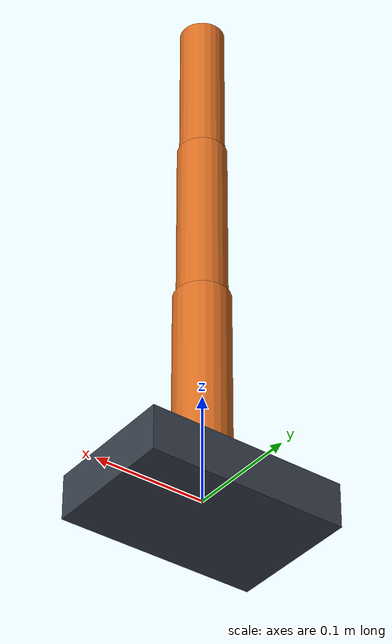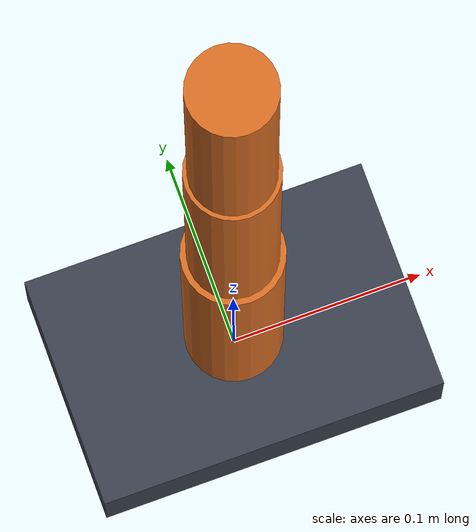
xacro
<?xml version="1.0"?>
<robot xmlns:xacro="http://www.ros.org/wiki/xacro" name="mab_three_axis_rehab_robot">
  <xacro:arg name="bus" default="SPI"/>
  <xacro:arg name="data_rate" default="5M"/>
  <xacro:arg name="use_pds" default="true"/>
  <xacro:arg name="use_regular_can_frames" default="false"/>
  <xacro:arg name="pds_id" default="100"/>
  <xacro:arg name="power_stage_socket" default="2"/>
  <xacro:arg name="fast_mode" default="false"/>
  <xacro:arg name="md_id_1" default="37"/>
  <xacro:arg name="md_id_2" default="940"/>
  <xacro:arg name="md_id_3" default="941"/>
  <xacro:arg name="auto_enable_power_stage" default="true"/>
  <xacro:arg name="disable_power_stage_on_deactivate" default="false"/>
  <xacro:arg name="zero_on_activate" default="false"/>
  <xacro:arg name="allow_no_connected_drives" default="true"/>
  <xacro:arg name="save_md_configuration_to_flash" default="false"/>
  <xacro:arg name="hold_position_on_activate_ms" default="3000"/>
  <xacro:arg name="maintenance_reload_enabled" default="true"/>
  <xacro:arg name="maintenance_restore_controller" default="previous"/>
  <xacro:arg name="maintenance_service_timeout_ms" default="3000"/>

  <!-- Joint-specific motor mapping -->
  <xacro:arg name="motor_name_1" default="MA-p-45-36_KV80"/>
  <xacro:arg name="motor_name_2" default="MA-p-40_10_K170"/>
  <xacro:arg name="motor_name_3" default="MA-p-40_10_K170"/>
  <!-- Drive register shows motorGearRatio=1.0; these URDF values model the external joint reduction. -->
  <xacro:arg name="gear_ratio_1" default="0.02631578947368421"/>
  <xacro:arg name="gear_ratio_2" default="0.1"/>
  <xacro:arg name="gear_ratio_3" default="0.1"/>

  <!-- Motor and controller values downloaded from MD0037. -->
  <xacro:arg name="motor_pole_pairs_1" default="14"/>
  <xacro:arg name="motor_kv_1" default="80"/>
  <xacro:arg name="motor_torque_constant_1" default="0.11"/>
  <xacro:arg name="motor_max_current_1" default="15.0"/>
  <xacro:arg name="motor_torque_bandwidth_hz_1" default="1000.0"/>
  <xacro:arg name="motor_shutdown_temp_1" default="80.0"/>
  <xacro:arg name="motor_friction_1" default="0.0"/>
  <xacro:arg name="motor_stiction_1" default="0.0"/>
  <xacro:arg name="motor_calibration_mode_1" default="0"/>
  <xacro:arg name="limit_max_torque_1" default="40.0"/>
  <xacro:arg name="limit_max_velocity_1" default="20.0"/>
  <xacro:arg name="limit_position_min_1" default="-100"/>
  <xacro:arg name="limit_position_max_1" default="100"/>
  <xacro:arg name="limit_max_acceleration_1" default="60.0"/>
  <xacro:arg name="limit_max_deceleration_1" default="60.0"/>
  <xacro:arg name="profile_velocity_1" default="12.0"/>
  <xacro:arg name="profile_acceleration_1" default="30.0"/>
  <xacro:arg name="profile_deceleration_1" default="30.0"/>
  <xacro:arg name="profile_quick_stop_deceleration_1" default="50.0"/>
  <xacro:arg name="output_encoder_1" default="0"/>
  <xacro:arg name="output_encoder_default_baud_1" default="0"/>
  <xacro:arg name="output_encoder_mode_1" default="0"/>
  <xacro:arg name="output_encoder_calibration_mode_1" default="0"/>
  <xacro:arg name="position_pid_kp_1" default="10.5"/>
  <xacro:arg name="position_pid_ki_1" default="1.5"/>
  <xacro:arg name="position_pid_kd_1" default="0.0"/>
  <xacro:arg name="position_pid_windup_1" default="1.0"/>
  <xacro:arg name="velocity_pid_kp_1" default="0.1"/>
  <xacro:arg name="velocity_pid_ki_1" default="0.0005"/>
  <xacro:arg name="velocity_pid_kd_1" default="0.0"/>
  <xacro:arg name="velocity_pid_windup_1" default="0.25"/>
  <xacro:arg name="impedance_kp_1" default="0.0"/>
  <xacro:arg name="impedance_kd_1" default="0.0"/>
  <xacro:arg name="user_gpio_configuration_1" default="0"/>
  <xacro:arg name="reverse_direction_1" default="0"/>
  <xacro:arg name="shunt_resistance_1" default="0.004"/>

  <!-- Motor and controller values downloaded from MD0939/MD0941. -->
  <xacro:arg name="motor_pole_pairs_2" default="14"/>
  <xacro:arg name="motor_kv_2" default="170"/>
  <xacro:arg name="motor_torque_constant_2" default="0.056"/>
  <xacro:arg name="motor_max_current_2" default="15.0"/>
  <xacro:arg name="motor_torque_bandwidth_hz_2" default="1000.0"/>
  <xacro:arg name="motor_shutdown_temp_2" default="80.0"/>
  <xacro:arg name="motor_friction_2" default="0.0"/>
  <xacro:arg name="motor_stiction_2" default="0.0"/>
  <xacro:arg name="motor_calibration_mode_2" default="0"/>
  <xacro:arg name="limit_max_torque_2" default="40.0"/>
  <xacro:arg name="limit_max_velocity_2" default="20.0"/>
  <xacro:arg name="limit_position_min_2" default="-600.283"/>
  <xacro:arg name="limit_position_max_2" default="600.283"/>
  <xacro:arg name="limit_max_acceleration_2" default="60.0"/>
  <xacro:arg name="limit_max_deceleration_2" default="60.0"/>
  <xacro:arg name="profile_velocity_2" default="12.0"/>
  <xacro:arg name="profile_acceleration_2" default="30.0"/>
  <xacro:arg name="profile_deceleration_2" default="30.0"/>
  <xacro:arg name="profile_quick_stop_deceleration_2" default="50.0"/>
  <xacro:arg name="output_encoder_2" default="0"/>
  <xacro:arg name="output_encoder_default_baud_2" default="0"/>
  <xacro:arg name="output_encoder_mode_2" default="0"/>
  <xacro:arg name="output_encoder_calibration_mode_2" default="0"/>
  <xacro:arg name="position_pid_kp_2" default="3.5"/>
  <xacro:arg name="position_pid_ki_2" default="0.5"/>
  <xacro:arg name="position_pid_kd_2" default="0.0"/>
  <xacro:arg name="position_pid_windup_2" default="1.0"/>
  <xacro:arg name="velocity_pid_kp_2" default="0.6"/>
  <xacro:arg name="velocity_pid_ki_2" default="0.0005"/>
  <xacro:arg name="velocity_pid_kd_2" default="0.0"/>
  <xacro:arg name="velocity_pid_windup_2" default="0.25"/>
  <xacro:arg name="impedance_kp_2" default="0.0"/>
  <xacro:arg name="impedance_kd_2" default="0.0"/>
  <xacro:arg name="user_gpio_configuration_2" default="0"/>
  <xacro:arg name="reverse_direction_2" default="0"/>
  <xacro:arg name="shunt_resistance_2" default="0.004"/>

  <xacro:arg name="motor_pole_pairs_3" default="14"/>
  <xacro:arg name="motor_kv_3" default="170"/>
  <xacro:arg name="motor_torque_constant_3" default="0.056"/>
  <xacro:arg name="motor_max_current_3" default="15.0"/>
  <xacro:arg name="motor_torque_bandwidth_hz_3" default="1000.0"/>
  <xacro:arg name="motor_shutdown_temp_3" default="80.0"/>
  <xacro:arg name="motor_friction_3" default="0.0"/>
  <xacro:arg name="motor_stiction_3" default="0.0"/>
  <xacro:arg name="motor_calibration_mode_3" default="0"/>
  <xacro:arg name="limit_max_torque_3" default="40.0"/>
  <xacro:arg name="limit_max_velocity_3" default="20.0"/>
  <xacro:arg name="limit_position_min_3" default="-100"/>
  <xacro:arg name="limit_position_max_3" default="100"/>
  <xacro:arg name="limit_max_acceleration_3" default="60.0"/>
  <xacro:arg name="limit_max_deceleration_3" default="60.0"/>
  <xacro:arg name="profile_velocity_3" default="12.0"/>
  <xacro:arg name="profile_acceleration_3" default="30.0"/>
  <xacro:arg name="profile_deceleration_3" default="30.0"/>
  <xacro:arg name="profile_quick_stop_deceleration_3" default="50.0"/>
  <xacro:arg name="output_encoder_3" default="0"/>
  <xacro:arg name="output_encoder_default_baud_3" default="0"/>
  <xacro:arg name="output_encoder_mode_3" default="0"/>
  <xacro:arg name="output_encoder_calibration_mode_3" default="0"/>
  <xacro:arg name="position_pid_kp_3" default="3.5"/>
  <xacro:arg name="position_pid_ki_3" default="0.5"/>
  <xacro:arg name="position_pid_kd_3" default="0.0"/>
  <xacro:arg name="position_pid_windup_3" default="1.0"/>
  <xacro:arg name="velocity_pid_kp_3" default="0.6"/>
  <xacro:arg name="velocity_pid_ki_3" default="0.0005"/>
  <xacro:arg name="velocity_pid_kd_3" default="0.0"/>
  <xacro:arg name="velocity_pid_windup_3" default="0.25"/>
  <xacro:arg name="impedance_kp_3" default="0.0"/>
  <xacro:arg name="impedance_kd_3" default="0.0"/>
  <xacro:arg name="user_gpio_configuration_3" default="0"/>
  <xacro:arg name="reverse_direction_3" default="0"/>
  <xacro:arg name="shunt_resistance_3" default="0.004"/>

  <!-- Shared values are retained for compatibility with the current hardware plugin. -->
  <xacro:arg name="md_torque_bandwidth_hz" default="1000.0"/>
  <xacro:arg name="md_can_watchdog_ms" default="nan"/>
  <xacro:arg name="md_limit_max_torque" default="40.0"/>
  <xacro:arg name="md_limit_max_velocity" default="20.0"/>
  <xacro:arg name="md_limit_max_acceleration" default="60.0"/>
  <xacro:arg name="md_limit_max_deceleration" default="60.0"/>
  <xacro:arg name="md_limit_position_min" default="-100"/>
  <xacro:arg name="md_limit_position_max" default="100"/>
  <xacro:arg name="md_profile_velocity" default="12.0"/>
  <xacro:arg name="md_profile_acceleration" default="30.0"/>
  <xacro:arg name="md_profile_deceleration" default="30.0"/>
  <xacro:arg name="md_profile_quick_stop_deceleration" default="50.0"/>
  <xacro:arg name="md_position_pid_kp" default="10.5"/>
  <xacro:arg name="md_position_pid_ki" default="1.5"/>
  <xacro:arg name="md_position_pid_kd" default="0.0"/>
  <xacro:arg name="md_position_pid_windup" default="1.0"/>
  <xacro:arg name="md_velocity_pid_kp" default="0.1"/>
  <xacro:arg name="md_velocity_pid_ki" default="0.0005"/>
  <xacro:arg name="md_velocity_pid_kd" default="0.0"/>
  <xacro:arg name="md_velocity_pid_windup" default="0.25"/>
  <xacro:arg name="md_impedance_kp" default="0.75"/>
  <xacro:arg name="md_impedance_kd" default="0.02"/>

  <material name="carbon">
    <color rgba="0.22 0.25 0.30 1.0"/>
  </material>
  <material name="signal">
    <color rgba="0.85 0.43 0.14 1.0"/>
  </material>

  <link name="base_link">
    <visual>
      <geometry>
        <box size="0.18 0.12 0.04"/>
      </geometry>
      <material name="carbon"/>
    </visual>
    <collision>
      <geometry>
        <box size="0.18 0.12 0.04"/>
      </geometry>
    </collision>
    <inertial>
      <mass value="1.0"/>
      <origin xyz="0 0 0"/>
      <inertia ixx="0.01" ixy="0.0" ixz="0.0" iyy="0.01" iyz="0.0" izz="0.01"/>
    </inertial>
  </link>

  <link name="link_1">
    <visual>
      <geometry>
        <cylinder radius="0.025" length="0.18"/>
      </geometry>
      <origin xyz="0 0 0.09" rpy="0 0 0"/>
      <material name="signal"/>
    </visual>
    <collision>
      <geometry>
        <cylinder radius="0.025" length="0.18"/>
      </geometry>
      <origin xyz="0 0 0.09" rpy="0 0 0"/>
    </collision>
    <inertial>
      <mass value="0.4"/>
      <origin xyz="0 0 0.09"/>
      <inertia ixx="0.002" ixy="0.0" ixz="0.0" iyy="0.002" iyz="0.0" izz="0.001"/>
    </inertial>
  </link>

  <link name="link_2">
    <visual>
      <geometry>
        <cylinder radius="0.022" length="0.16"/>
      </geometry>
      <origin xyz="0 0 0.08" rpy="0 0 0"/>
      <material name="signal"/>
    </visual>
    <collision>
      <geometry>
        <cylinder radius="0.022" length="0.16"/>
      </geometry>
      <origin xyz="0 0 0.08" rpy="0 0 0"/>
    </collision>
    <inertial>
      <mass value="0.3"/>
      <origin xyz="0 0 0.08"/>
      <inertia ixx="0.0016" ixy="0.0" ixz="0.0" iyy="0.0016" iyz="0.0" izz="0.0008"/>
    </inertial>
  </link>

  <link name="link_3">
    <visual>
      <geometry>
        <cylinder radius="0.02" length="0.14"/>
      </geometry>
      <origin xyz="0 0 0.07" rpy="0 0 0"/>
      <material name="signal"/>
    </visual>
    <collision>
      <geometry>
        <cylinder radius="0.02" length="0.14"/>
      </geometry>
      <origin xyz="0 0 0.07" rpy="0 0 0"/>
    </collision>
    <inertial>
      <mass value="0.25"/>
      <origin xyz="0 0 0.07"/>
      <inertia ixx="0.0012" ixy="0.0" ixz="0.0" iyy="0.0012" iyz="0.0" izz="0.0006"/>
    </inertial>
  </link>

  <joint name="joint_1" type="revolute">
    <parent link="base_link"/>
    <child link="link_1"/>
    <origin xyz="0 0 0.02" rpy="0 0 0"/>
    <axis xyz="0 0 1"/>
    <limit
      lower="$(arg limit_position_min_1)"
      upper="$(arg limit_position_max_1)"
      effort="$(arg limit_max_torque_1)"
      velocity="$(arg limit_max_velocity_1)"/>
  </joint>

  <joint name="joint_2" type="revolute">
    <parent link="link_1"/>
    <child link="link_2"/>
    <origin xyz="0 0 0.18" rpy="0 0 0"/>
    <axis xyz="0 1 0"/>
    <limit
      lower="$(arg limit_position_min_2)"
      upper="$(arg limit_position_max_2)"
      effort="$(arg limit_max_torque_2)"
      velocity="$(arg limit_max_velocity_2)"/>
  </joint>

  <joint name="joint_3" type="revolute">
    <parent link="link_2"/>
    <child link="link_3"/>
    <origin xyz="0 0 0.16" rpy="0 0 0"/>
    <axis xyz="0 1 0"/>
    <limit
      lower="$(arg limit_position_min_3)"
      upper="$(arg limit_position_max_3)"
      effort="$(arg limit_max_torque_3)"
      velocity="$(arg limit_max_velocity_3)"/>
  </joint>

  <ros2_control name="mab_hardware" type="system">
    <hardware>
      <plugin>mab_ros2_control/MABSystemHardware</plugin>
      <param name="bus">$(arg bus)</param>
      <param name="data_rate">$(arg data_rate)</param>
      <param name="use_pds">$(arg use_pds)</param>
      <param name="use_regular_can_frames">$(arg use_regular_can_frames)</param>
      <param name="pds_id">$(arg pds_id)</param>
      <param name="power_stage_socket">$(arg power_stage_socket)</param>
      <param name="fast_mode">$(arg fast_mode)</param>
      <param name="auto_enable_power_stage">$(arg auto_enable_power_stage)</param>
      <param name="disable_power_stage_on_deactivate">$(arg disable_power_stage_on_deactivate)</param>
      <param name="zero_on_activate">$(arg zero_on_activate)</param>
      <param name="allow_no_connected_drives">$(arg allow_no_connected_drives)</param>
      <param name="save_md_configuration_to_flash">$(arg save_md_configuration_to_flash)</param>
      <param name="hold_position_on_activate_ms">$(arg hold_position_on_activate_ms)</param>
      <param name="maintenance_reload_enabled">$(arg maintenance_reload_enabled)</param>
      <param name="maintenance_restore_controller">$(arg maintenance_restore_controller)</param>
      <param name="maintenance_service_timeout_ms">$(arg maintenance_service_timeout_ms)</param>
      <param name="md_torque_bandwidth_hz">$(arg md_torque_bandwidth_hz)</param>
      <param name="md_can_watchdog_ms">$(arg md_can_watchdog_ms)</param>
      <param name="md_limit_max_torque">$(arg md_limit_max_torque)</param>
      <param name="md_limit_max_velocity">$(arg md_limit_max_velocity)</param>
      <param name="md_limit_max_acceleration">$(arg md_limit_max_acceleration)</param>
      <param name="md_limit_max_deceleration">$(arg md_limit_max_deceleration)</param>
      <param name="md_limit_position_min">$(arg md_limit_position_min)</param>
      <param name="md_limit_position_max">$(arg md_limit_position_max)</param>
      <param name="md_profile_velocity">$(arg md_profile_velocity)</param>
      <param name="md_profile_acceleration">$(arg md_profile_acceleration)</param>
      <param name="md_profile_deceleration">$(arg md_profile_deceleration)</param>
      <param name="md_profile_quick_stop_deceleration">$(arg md_profile_quick_stop_deceleration)</param>
      <param name="md_position_pid_kp">$(arg md_position_pid_kp)</param>
      <param name="md_position_pid_ki">$(arg md_position_pid_ki)</param>
      <param name="md_position_pid_kd">$(arg md_position_pid_kd)</param>
      <param name="md_position_pid_windup">$(arg md_position_pid_windup)</param>
      <param name="md_velocity_pid_kp">$(arg md_velocity_pid_kp)</param>
      <param name="md_velocity_pid_ki">$(arg md_velocity_pid_ki)</param>
      <param name="md_velocity_pid_kd">$(arg md_velocity_pid_kd)</param>
      <param name="md_velocity_pid_windup">$(arg md_velocity_pid_windup)</param>
      <param name="md_impedance_kp">$(arg md_impedance_kp)</param>
      <param name="md_impedance_kd">$(arg md_impedance_kd)</param>
    </hardware>

    <joint name="joint_1">
      <!-- Joint 1 uses MD0037 with an MA-p-45-36_KV80 motor and an external 38:1 reduction. -->
      <param name="can_id">$(arg md_id_1)</param>
      <param name="motor_name">$(arg motor_name_1)</param>
      <param name="gear_ratio">$(arg gear_ratio_1)</param>
      <param name="pole_pairs">$(arg motor_pole_pairs_1)</param>
      <param name="kv">$(arg motor_kv_1)</param>
      <param name="torque_constant">$(arg motor_torque_constant_1)</param>
      <param name="max_current">$(arg motor_max_current_1)</param>
      <param name="torque_bandwidth_hz">$(arg motor_torque_bandwidth_hz_1)</param>
      <param name="friction">$(arg motor_friction_1)</param>
      <param name="stiction">$(arg motor_stiction_1)</param>
      <param name="motor_calibration_mode">$(arg motor_calibration_mode_1)</param>
      <param name="shutdown_temp">$(arg motor_shutdown_temp_1)</param>
      <param name="limit_max_torque">$(arg limit_max_torque_1)</param>
      <param name="limit_max_velocity">$(arg limit_max_velocity_1)</param>
      <param name="limit_position_min">$(arg limit_position_min_1)</param>
      <param name="limit_position_max">$(arg limit_position_max_1)</param>
      <param name="md_limit_position_min">$(arg limit_position_min_1)</param>
      <param name="md_limit_position_max">$(arg limit_position_max_1)</param>
      <param name="limit_max_acceleration">$(arg limit_max_acceleration_1)</param>
      <param name="limit_max_deceleration">$(arg limit_max_deceleration_1)</param>
      <param name="profile_velocity">$(arg profile_velocity_1)</param>
      <param name="profile_acceleration">$(arg profile_acceleration_1)</param>
      <param name="profile_deceleration">$(arg profile_deceleration_1)</param>
      <param name="profile_quick_stop_deceleration">$(arg profile_quick_stop_deceleration_1)</param>
      <param name="output_encoder">$(arg output_encoder_1)</param>
      <param name="output_encoder_default_baud">$(arg output_encoder_default_baud_1)</param>
      <param name="output_encoder_mode">$(arg output_encoder_mode_1)</param>
      <param name="output_encoder_calibration_mode">$(arg output_encoder_calibration_mode_1)</param>
      <param name="position_pid_kp">$(arg position_pid_kp_1)</param>
      <param name="position_pid_ki">$(arg position_pid_ki_1)</param>
      <param name="position_pid_kd">$(arg position_pid_kd_1)</param>
      <param name="position_pid_windup">$(arg position_pid_windup_1)</param>
      <param name="velocity_pid_kp">$(arg velocity_pid_kp_1)</param>
      <param name="velocity_pid_ki">$(arg velocity_pid_ki_1)</param>
      <param name="velocity_pid_kd">$(arg velocity_pid_kd_1)</param>
      <param name="velocity_pid_windup">$(arg velocity_pid_windup_1)</param>
      <param name="impedance_kp">$(arg impedance_kp_1)</param>
      <param name="impedance_kd">$(arg impedance_kd_1)</param>
      <param name="user_gpio_configuration">$(arg user_gpio_configuration_1)</param>
      <param name="reverse_direction">$(arg reverse_direction_1)</param>
      <param name="shunt_resistance">$(arg shunt_resistance_1)</param>
      <command_interface name="position"/>
      <command_interface name="velocity"/>
      <command_interface name="effort"/>
      <state_interface name="position"/>
      <state_interface name="velocity"/>
      <state_interface name="effort"/>
      <state_interface name="voltage"/>
    </joint>

    <joint name="joint_2">
      <!-- Joint 2 uses MD0939 with an MA-p-40_10_K170 motor and an external 10:1 reduction. -->
      <param name="can_id">$(arg md_id_2)</param>
      <param name="motor_name">$(arg motor_name_2)</param>
      <param name="gear_ratio">$(arg gear_ratio_2)</param>
      <param name="pole_pairs">$(arg motor_pole_pairs_2)</param>
      <param name="kv">$(arg motor_kv_2)</param>
      <param name="torque_constant">$(arg motor_torque_constant_2)</param>
      <param name="max_current">$(arg motor_max_current_2)</param>
      <param name="torque_bandwidth_hz">$(arg motor_torque_bandwidth_hz_2)</param>
      <param name="friction">$(arg motor_friction_2)</param>
      <param name="stiction">$(arg motor_stiction_2)</param>
      <param name="motor_calibration_mode">$(arg motor_calibration_mode_2)</param>
      <param name="shutdown_temp">$(arg motor_shutdown_temp_2)</param>
      <param name="limit_max_torque">$(arg limit_max_torque_2)</param>
      <param name="limit_max_velocity">$(arg limit_max_velocity_2)</param>
      <param name="limit_position_min">$(arg limit_position_min_2)</param>
      <param name="limit_position_max">$(arg limit_position_max_2)</param>
      <param name="md_limit_position_min">$(arg limit_position_min_2)</param>
      <param name="md_limit_position_max">$(arg limit_position_max_2)</param>
      <param name="limit_max_acceleration">$(arg limit_max_acceleration_2)</param>
      <param name="limit_max_deceleration">$(arg limit_max_deceleration_2)</param>
      <param name="profile_velocity">$(arg profile_velocity_2)</param>
      <param name="profile_acceleration">$(arg profile_acceleration_2)</param>
      <param name="profile_deceleration">$(arg profile_deceleration_2)</param>
      <param name="profile_quick_stop_deceleration">$(arg profile_quick_stop_deceleration_2)</param>
      <param name="output_encoder">$(arg output_encoder_2)</param>
      <param name="output_encoder_default_baud">$(arg output_encoder_default_baud_2)</param>
      <param name="output_encoder_mode">$(arg output_encoder_mode_2)</param>
      <param name="output_encoder_calibration_mode">$(arg output_encoder_calibration_mode_2)</param>
      <param name="position_pid_kp">$(arg position_pid_kp_2)</param>
      <param name="position_pid_ki">$(arg position_pid_ki_2)</param>
      <param name="position_pid_kd">$(arg position_pid_kd_2)</param>
      <param name="position_pid_windup">$(arg position_pid_windup_2)</param>
      <param name="velocity_pid_kp">$(arg velocity_pid_kp_2)</param>
      <param name="velocity_pid_ki">$(arg velocity_pid_ki_2)</param>
      <param name="velocity_pid_kd">$(arg velocity_pid_kd_2)</param>
      <param name="velocity_pid_windup">$(arg velocity_pid_windup_2)</param>
      <param name="impedance_kp">$(arg impedance_kp_2)</param>
      <param name="impedance_kd">$(arg impedance_kd_2)</param>
      <param name="user_gpio_configuration">$(arg user_gpio_configuration_2)</param>
      <param name="reverse_direction">$(arg reverse_direction_2)</param>
      <param name="shunt_resistance">$(arg shunt_resistance_2)</param>
      <command_interface name="position"/>
      <command_interface name="velocity"/>
      <command_interface name="effort"/>
      <state_interface name="position"/>
      <state_interface name="velocity"/>
      <state_interface name="effort"/>
      <state_interface name="voltage"/>
    </joint>

    <joint name="joint_3">
      <!-- Joint 3 uses MD0941 with an MA-p-40_10_K170 motor and an external 10:1 reduction. -->
      <param name="can_id">$(arg md_id_3)</param>
      <param name="motor_name">$(arg motor_name_3)</param>
      <param name="gear_ratio">$(arg gear_ratio_3)</param>
      <param name="pole_pairs">$(arg motor_pole_pairs_3)</param>
      <param name="kv">$(arg motor_kv_3)</param>
      <param name="torque_constant">$(arg motor_torque_constant_3)</param>
      <param name="max_current">$(arg motor_max_current_3)</param>
      <param name="torque_bandwidth_hz">$(arg motor_torque_bandwidth_hz_3)</param>
      <param name="friction">$(arg motor_friction_3)</param>
      <param name="stiction">$(arg motor_stiction_3)</param>
      <param name="motor_calibration_mode">$(arg motor_calibration_mode_3)</param>
      <param name="shutdown_temp">$(arg motor_shutdown_temp_3)</param>
      <param name="limit_max_torque">$(arg limit_max_torque_3)</param>
      <param name="limit_max_velocity">$(arg limit_max_velocity_3)</param>
      <param name="limit_position_min">$(arg limit_position_min_3)</param>
      <param name="limit_position_max">$(arg limit_position_max_3)</param>
      <param name="md_limit_position_min">$(arg limit_position_min_3)</param>
      <param name="md_limit_position_max">$(arg limit_position_max_3)</param>
      <param name="limit_max_acceleration">$(arg limit_max_acceleration_3)</param>
      <param name="limit_max_deceleration">$(arg limit_max_deceleration_3)</param>
      <param name="profile_velocity">$(arg profile_velocity_3)</param>
      <param name="profile_acceleration">$(arg profile_acceleration_3)</param>
      <param name="profile_deceleration">$(arg profile_deceleration_3)</param>
      <param name="profile_quick_stop_deceleration">$(arg profile_quick_stop_deceleration_3)</param>
      <param name="output_encoder">$(arg output_encoder_3)</param>
      <param name="output_encoder_default_baud">$(arg output_encoder_default_baud_3)</param>
      <param name="output_encoder_mode">$(arg output_encoder_mode_3)</param>
      <param name="output_encoder_calibration_mode">$(arg output_encoder_calibration_mode_3)</param>
      <param name="position_pid_kp">$(arg position_pid_kp_3)</param>
      <param name="position_pid_ki">$(arg position_pid_ki_3)</param>
      <param name="position_pid_kd">$(arg position_pid_kd_3)</param>
      <param name="position_pid_windup">$(arg position_pid_windup_3)</param>
      <param name="velocity_pid_kp">$(arg velocity_pid_kp_3)</param>
      <param name="velocity_pid_ki">$(arg velocity_pid_ki_3)</param>
      <param name="velocity_pid_kd">$(arg velocity_pid_kd_3)</param>
      <param name="velocity_pid_windup">$(arg velocity_pid_windup_3)</param>
      <param name="impedance_kp">$(arg impedance_kp_3)</param>
      <param name="impedance_kd">$(arg impedance_kd_3)</param>
      <param name="user_gpio_configuration">$(arg user_gpio_configuration_3)</param>
      <param name="reverse_direction">$(arg reverse_direction_3)</param>
      <param name="shunt_resistance">$(arg shunt_resistance_3)</param>
      <command_interface name="position"/>
      <command_interface name="velocity"/>
      <command_interface name="effort"/>
      <state_interface name="position"/>
      <state_interface name="velocity"/>
      <state_interface name="effort"/>
      <state_interface name="voltage"/>
    </joint>

    <sensor name="mab_power_stage">
      <state_interface name="bus_voltage"/>
    </sensor>
  </ros2_control>
</robot>
